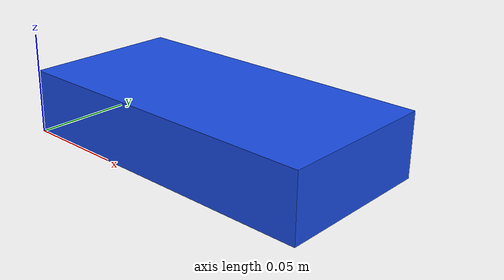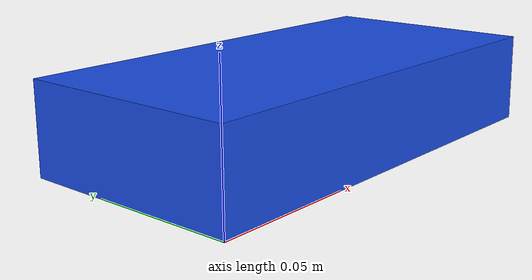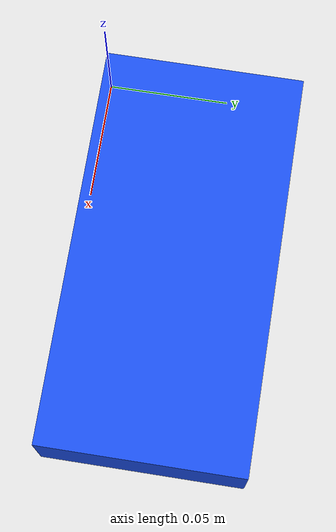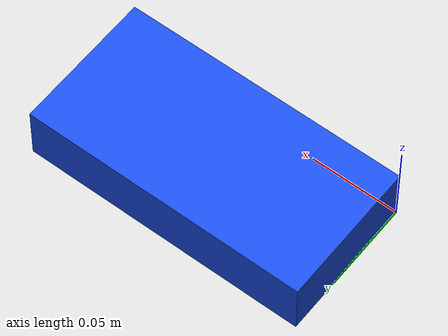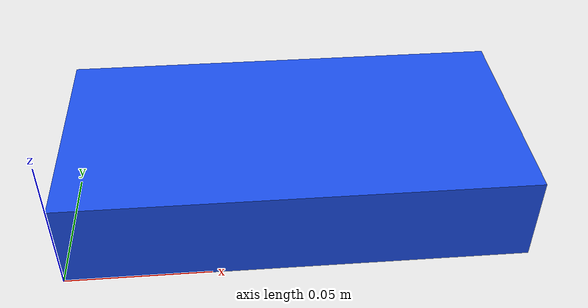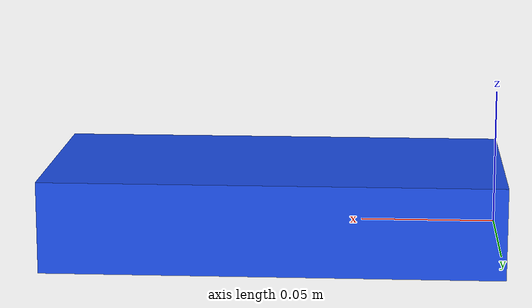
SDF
<sdf version="1.7">
  <model name="square">
    <link name="my_piece_link">
      <inertial>
        <mass>0.100000</mass>
        <inertia>
          <ixx>8.416667e-05</ixx>
          <iyy>3.341667e-04</iyy>
          <izz>4.166667e-04</izz>
          <ixy>0</ixy>
          <ixz>0</ixz>
          <iyz>0</iyz>
        </inertia>
      </inertial>
      <visual name="visual">
        <geometry>
          <mesh>
            <uri>rectangle.obj</uri>
            <scale>0.8 0.8 1.6</scale>
          </mesh>
        </geometry>
                <material>
                    <ambient>0.050 0.150 0.450 1.000</ambient>
                    <diffuse>0.100 0.300 0.900 1.000</diffuse>
                    <specular>0.2 0.2 0.2 1</specular>
                    <emissive>0 0 0 1</emissive>
                </material>
      </visual>
      <collision name="collision">
        <geometry>
          <mesh>
            <uri>rectangle.obj</uri>
            <scale>0.8 0.8 1.6</scale>
          </mesh>
        </geometry>
        <surface>
          <friction>
            <ode>
              <mu>5.0</mu>
              <mu2>5.0</mu2>
            </ode>
          </friction>
        </surface>
      </collision>
    </link>
  </model>
</sdf>
